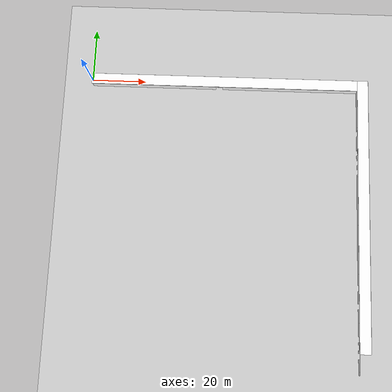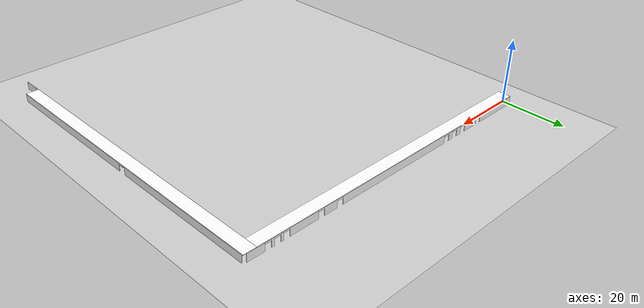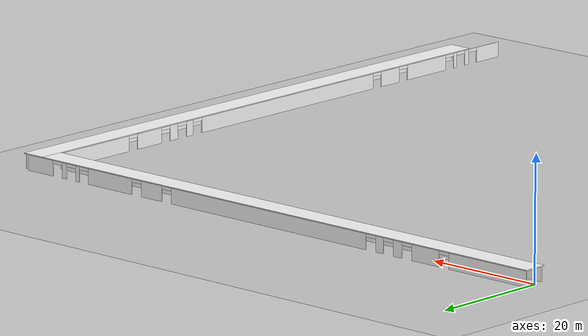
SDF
<sdf version="1.6">
 <world name="default">
  <light name="sun" type="directional">
   <pose>0 0 10 0 -0 0</pose>
   <diffuse>0.8 0.8 0.8 1</diffuse>
   <specular>0.2 0.2 0.2 1</specular>
   <attenuation>
    <range>1000</range>
    <constant>0.9</constant>
    <linear>0.01</linear>
    <quadratic>0.001</quadratic>
   </attenuation>
   <direction>-0.5 0.1 -0.9</direction>
  </light>
  <model name="ground_plane">
   <static>1</static>
   <link name="link">
    <collision name="collision">
     <geometry><plane><normal>0 0 1</normal><size>100 100</size></plane></geometry>
     <surface>
      <contact><collide_bitmask>65535</collide_bitmask></contact>
      <friction><ode><mu>100</mu><mu2>50</mu2></ode></friction>
     </surface>
    </collision>
    <visual name="visual">
     <cast_shadows>0</cast_shadows>
     <geometry><plane><normal>0 0 1</normal><size>100 100</size></plane></geometry>
     <material>
      <script><uri>file://media/materials/scripts/gazebo.material</uri><name>Gazebo/Grey</name></script>
     </material>
    </visual>
   </link>
  </model>
  <gravity>0 0 -9.8</gravity>
  <magnetic_field>6e-06 2.3e-05 -4.2e-05</magnetic_field>
  <atmosphere type="adiabatic"/>
  <physics name="default_physics" default="0" type="ode">
   <max_step_size>0.001</max_step_size>
   <real_time_factor>1</real_time_factor>
   <real_time_update_rate>1000</real_time_update_rate>
  </physics>
  <scene><ambient>0.4 0.4 0.4 1</ambient><background>0.7 0.7 0.7 1</background><shadows>1</shadows></scene>
  <audio><device>default</device></audio>
  <spherical_coordinates>
   <surface_model>EARTH_WGS84</surface_model>
   <latitude_deg>0</latitude_deg>
   <longitude_deg>0</longitude_deg>
   <elevation>0</elevation>
   <heading_deg>0</heading_deg>
  </spherical_coordinates>
  <model name="wall_with_door"><include><uri>model://wall_with_door</uri></include></model>
  <model name="wall_with_door_ex1"><include><uri>model://wall_with_door_ex1</uri></include></model>
  <model name="brick1"><include><uri>model://brick1</uri></include><pose>0 1.25 2.56 1.57 0 0</pose></model>
  <model name="wall_with_door">
   <include><uri>model://wall_with_door</uri></include>
   <pose>106 2 0 0 0 -1.57</pose>
  </model>
  <model name="wall_with_door_ex1">
   <include><uri>model://wall_with_door_ex1</uri></include>
   <pose>98 -2 0 0 0 -1.57</pose>
  </model>
  <model name="brick1">
   <include><uri>model://brick1</uri></include>
   <pose>103.25 2 2.56 1.57 0 -1.57</pose>
  </model>
 </world>
</sdf>

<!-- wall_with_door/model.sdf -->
<sdf version='1.6'>
  <model name='wall_with_door'>
    <pose frame=''>50  -2  0 0 -0 0</pose>
    <link name='Wall_2'>
      <pose frame=''>0 0 0 0 -0 0</pose>
 <visual name='Wall_2_Visual_0'>
 <pose frame=''> -26.272  0 1.25 0 -0 0</pose>
 <geometry>
 <box>
 <size> 46.5  0.15 2.5</size>
 </box>
 </geometry>
 <material>
 <script>
	 <uri>model://floor/materials/scripts</uri>
	 <uri>model://floor/materials/textures</uri>
 <name>floor</name>
 </script>
 <ambient>1 1 1 1</ambient>
 </material>
 <meta>
 <layer>0</layer>
 </meta>
 </visual>
 <collision name='Wall_2_Collision_0'>
 <geometry>
 <box>
  <size> 47.456  0.15 2.5</size>
 </box>
 </geometry>
 <pose frame=''> -26.272  0 1.25 0 -0 0</pose>
 </collision>
<visual name='Wall_2_Visual_1'>
 <pose frame=''> 24.728  0 1.25 0 -0 0</pose>
 <geometry>
 <box>
 <size> 50.544  0.15 2.5</size>
 </box>
 </geometry>
 <material>
 <script>
          <uri>model://floor/materials/scripts</uri>
         <uri>model://floor/materials/textures</uri>
 <name>floor</name>
 </script>
 <ambient>1 1 1 1</ambient>
 </material>
 <meta>
 <layer>0</layer>
 </meta>
 </visual>
 <collision name='Wall_2_Collision_1'>
 <geometry>
 <box>
  <size> 50.544  0.15 2.5</size>
 </box>
 </geometry>
 <pose frame=''> 24.728  0 1.25 0 -0 0</pose>
 </collision>
 <visual name='Door_2_Visual_0'>
 <pose frame=''> -1.544  0 2.25 0 -0 0</pose>
 <geometry>
 <box>
 <size>2 0.15 0.5</size>
 </box>
 </geometry>
 <material>
 <script>
          <uri>model://floor/materials/scripts</uri>
         <uri>model://floor/materials/textures</uri>
 <name>floor</name>
 </script>
 <ambient>1 1 1 1</ambient>
 </material>
 <meta>
 <layer>0</layer>
 </meta>
 </visual>
 <collision name='Door_2_Collision_0'>
 <geometry>
 <box>
 <size>2 0.15 0.5</size>
 </box>
 </geometry>
 <pose frame=''> -1.544  0 2.25 0 -0 0</pose>
 </collision>
 </link>
 <static>1</static>
 </model>
 </sdf>

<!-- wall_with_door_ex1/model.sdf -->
<sdf version='1.6'>
  <model name='wall_with_door'>
    <pose frame=''>50  2  0 0 -0 0</pose>
    <link name='Wall_2'>
      <pose frame=''>0 0 0 0 -0 0</pose>
 <visual name='Wall_2_Visual_0'>
 <pose frame=''> -42.3645  0 1.25 0 -0 0</pose>
 <geometry>
 <box>
 <size> 15.271  0.15 2.5</size>
 </box>
 </geometry>
 <material>
 <script>
          <uri>model://floor/materials/scripts</uri>
         <uri>model://floor/materials/textures</uri>
 <name>floor</name>
 </script>
 <ambient>1 1 1 1</ambient>
 </material>
 <meta>
 <layer>0</layer>
 </meta>
 </visual>
 <collision name='Wall_2_Collision_0'>
 <geometry>
 <box>
  <size> 15.271  0.15 2.5</size>
 </box>
 </geometry>
 <pose frame=''> -42.3645  0 1.25 0 -0 0</pose>
 </collision>
<visual name='Wall_2_Visual_1'>
 <pose frame=''> -30.0405  0 1.25 0 -0 0</pose>
 <geometry>
 <box>
 <size> 5.377  0.15 2.5</size>
 </box>
 </geometry>
 <material>
 <script>
          <uri>model://floor/materials/scripts</uri>
         <uri>model://floor/materials/textures</uri>
 <name>floor</name>
 </script>
 <ambient>1 1 1 1</ambient>
 </material>
 <meta>
 <layer>0</layer>
 </meta>
 </visual>
 <collision name='Wall_2_Collision_1'>
 <geometry>
 <box>
  <size> 5.377  0.15 2.5</size>
 </box>
 </geometry>
 <pose frame=''> -30.0405  0 1.25 0 -0 0</pose>
 </collision>
<visual name='Wall_2_Visual_2'>
 <pose frame=''> -24.472  0 1.25 0 -0 0</pose>
 <geometry>
 <box>
 <size> 1.76  0.15 2.5</size>
 </box>
 </geometry>
 <material>
 <script>
          <uri>model://floor/materials/scripts</uri>
         <uri>model://floor/materials/textures</uri>
 <name>floor</name>
 </script>
 <ambient>1 1 1 1</ambient>
 </material>
 <meta>
 <layer>0</layer>
 </meta>
 </visual>
 <collision name='Wall_2_Collision_2'>
 <geometry>
 <box>
  <size> 1.76  0.15 2.5</size>
 </box>
 </geometry>
 <pose frame=''> -24.472  0 1.25 0 -0 0</pose>
 </collision>
<visual name='Wall_2_Visual_3'>
 <pose frame=''> -20.8175  0 1.25 0 -0 0</pose>
 <geometry>
 <box>
 <size> 1.549  0.15 2.5</size>
 </box>
 </geometry>
 <material>
 <script>
          <uri>model://floor/materials/scripts</uri>
         <uri>model://floor/materials/textures</uri>
 <name>floor</name>

 </script>
 <ambient>1 1 1 1</ambient>
 </material>
 <meta>
 <layer>0</layer>
 </meta>
 </visual>
 <collision name='Wall_2_Collision_3'>
 <geometry>
 <box>
  <size> 1.549  0.15 2.5</size>
 </box>
 </geometry>
 <pose frame=''> -20.8175  0 1.25 0 -0 0</pose>
 </collision>
<visual name='Wall_2_Visual_4'>
 <pose frame=''> 2.1425  0 1.25 0 -0 0</pose>
 <geometry>
 <box>
 <size> 40.371  0.15 2.5</size>
 </box>
 </geometry>
 <material>
 <script>
          <uri>model://floor/materials/scripts</uri>
         <uri>model://floor/materials/textures</uri>
 <name>floor</name>
 </script>
 <ambient>1 1 1 1</ambient>
 </material>
 <meta>
 <layer>0</layer>
 </meta>
 </visual>
 <collision name='Wall_2_Collision_4'>
 <geometry>
 <box>
  <size> 40.371  0.15 2.5</size>
 </box>
 </geometry>
 <pose frame=''> 2.1425  0 1.25 0 -0 0</pose>
 </collision>
<visual name='Wall_2_Visual_5'>
 <pose frame=''> 26.519  0 1.25 0 -0 0</pose>
 <geometry>
 <box>
 <size> 4.382  0.15 2.5</size>
 </box>
 </geometry>
 <material>
 <script>
          <uri>model://floor/materials/scripts</uri>
         <uri>model://floor/materials/textures</uri>
 <name>floor</name>
 </script>
 <ambient>1 1 1 1</ambient>
 </material>
 <meta>
 <layer>0</layer>
 </meta>
 </visual>
 <collision name='Wall_2_Collision_5'>
 <geometry>
 <box>
  <size> 4.382  0.15 2.5</size>
 </box>
 </geometry>
 <pose frame=''> 26.519  0 1.25 0 -0 0</pose>
 </collision>
<visual name='Wall_2_Visual_6'>
 <pose frame=''> 35.369  0 1.25 0 -0 0</pose>
 <geometry>
 <box>
 <size> 9.318  0.15 2.5</size>
 </box>
 </geometry>
 <material>
 <script>
          <uri>model://floor/materials/scripts</uri>
         <uri>model://floor/materials/textures</uri>
 <name>floor</name>
 </script>
 <ambient>1 1 1 1</ambient>
 </material>
 <meta>
 <layer>0</layer>
 </meta>
 </visual>
 <collision name='Wall_2_Collision_6'>
 <geometry>
 <box>
  <size> 9.318  0.15 2.5</size>
 </box>
 </geometry>
 <pose frame=''> 35.369  0 1.25 0 -0 0</pose>
 </collision>
<visual name='Wall_2_Visual_7'>
 <pose frame=''> 42.4015  0 1.25 0 -0 0</pose>
 <geometry>
 <box>
 <size> 0.747  0.15 2.5</size>
 </box>
 </geometry>
 <material>
 <script>
          <uri>model://floor/materials/scripts</uri>
         <uri>model://floor/materials/textures</uri>
 <name>floor</name>

 </script>
 <ambient>1 1 1 1</ambient>
 </material>
 <meta>
 <layer>0</layer>
 </meta>
 </visual>
 <collision name='Wall_2_Collision_7'>
 <geometry>
 <box>
  <size> 0.747  0.15 2.5</size>
 </box>
 </geometry>
 <pose frame=''> 42.4015  0 1.25 0 -0 0</pose>
 </collision>
<visual name='Wall_2_Visual_8'>
 <pose frame=''> 45.239  0 1.25 0 -0 0</pose>
 <geometry>
 <box>
 <size> 0.928  0.15 2.5</size>
 </box>
 </geometry>
 <material>
 <script>
         <uri>model://floor/materials/scripts</uri>
         <uri>model://floor/materials/textures</uri>
 <name>floor</name>
 </script>
 <ambient>1 1 1 1</ambient>
 </material>
 <meta>
 <layer>0</layer>
 </meta>
 </visual>
 <collision name='Wall_2_Collision_8'>
 <geometry>
 <box>
  <size> 0.928  0.15 2.5</size>
 </box>
 </geometry>
 <pose frame=''> 45.239  0 1.25 0 -0 0</pose>
 </collision>
<visual name='Wall_2_Visual_9'>
 <pose frame=''> 50.4005  0 1.25 0 -0 0</pose>
 <geometry>
 <box>
 <size> 5.395  0.15 2.5</size>
 </box>
 </geometry>
 <material>
 <script>
          <uri>model://floor/materials/scripts</uri>
         <uri>model://floor/materials/textures</uri>
 <name>floor</name>
 </script>
 <ambient>1 1 1 1</ambient>
 </material>
 <meta>
 <layer>0</layer>
 </meta>
 </visual>
 <collision name='Wall_2_Collision_9'>
 <geometry>
 <box>
  <size> 5.395  0.15 2.5</size>
 </box>
 </geometry>
 <pose frame=''> 50.4005  0 1.25 0 -0 0</pose>
 </collision>
 <visual name='Door_2_Visual_0'>
 <pose frame=''> -33.729  0 2.25 0 -0 0</pose>
 <geometry>
 <box>
 <size>2 0.15 0.5</size>
 </box>
 </geometry>
 <material>
 <script>
          <uri>model://floor/materials/scripts</uri>
         <uri>model://floor/materials/textures</uri>
 <name>floor</name>
  </script>
 <ambient>1 1 1 1</ambient>
 </material>
 <meta>
 <layer>0</layer>
 </meta>
 </visual>
 <collision name='Door_2_Collision_0'>
 <geometry>
 <box>
 <size>2 0.15 0.5</size>
 </box>
 </geometry>
 <pose frame=''> -33.729  0 2.25 0 -0 0</pose>
 </collision>
<visual name='Door_2_Visual_1'>
 <pose frame=''> -26.352  0 2.25 0 -0 0</pose>
 <geometry>
 <box>
 <size>2 0.15 0.5</size>
 </box>
 </geometry>
 <material>
 <script>
          <uri>model://floor/materials/scripts</uri>
         <uri>model://floor/materials/textures</uri>
 <name>floor</name>
 </script>
 <ambient>1 1 1 1</ambient>
 </material>
 <meta>
 <layer>0</layer>
 </meta>
 </visual>
 <collision name='Door_2_Collision_1'>
 <geometry>
 <box>
 <size>2 0.15 0.5</size>
 </box>
 </geometry>
 <pose frame=''> -26.352  0 2.25 0 -0 0</pose>
 </collision>
<visual name='Door_2_Visual_2'>
 <pose frame=''> -22.592  0 2.25 0 -0 0</pose>
 <geometry>
 <box>
 <size>2 0.15 0.5</size>
 </box>
 </geometry>
 <material>
 <script>
          <uri>model://floor/materials/scripts</uri>
         <uri>model://floor/materials/textures</uri>
 <name>floor</name>
 </script>
 <ambient>1 1 1 1</ambient>
 </material>
 <meta>
 <layer>0</layer>
 </meta>
 </visual>
 <collision name='Door_2_Collision_2'>
 <geometry>
 <box>
 <size>2 0.15 0.5</size>
 </box>
 </geometry>
 <pose frame=''> -22.592  0 2.25 0 -0 0</pose>
 </collision>
<visual name='Door_2_Visual_3'>
 <pose frame=''> -19.043  0 2.25 0 -0 0</pose>
 <geometry>
 <box>
 <size>2 0.15 0.5</size>
 </box>
 </geometry>
 <material>
 <script>
         <uri>model://floor/materials/scripts</uri>
         <uri>model://floor/materials/textures</uri>
 <name>floor</name>

 </script>
 <ambient>1 1 1 1</ambient>
 </material>
 <meta>
 <layer>0</layer>
 </meta>
 </visual>
 <collision name='Door_2_Collision_3'>
 <geometry>
 <box>
 <size>2 0.15 0.5</size>
 </box>
 </geometry>
 <pose frame=''> -19.043  0 2.25 0 -0 0</pose>
 </collision>
<visual name='Door_2_Visual_4'>
 <pose frame=''> 23.328  0 2.25 0 -0 0</pose>
 <geometry>
 <box>
 <size>2 0.15 0.5</size>
 </box>
 </geometry>
 <material>
 <script>
         <uri>model://floor/materials/scripts</uri>
         <uri>model://floor/materials/textures</uri>
 <name>floor</name>
 </script>
 <ambient>1 1 1 1</ambient>
 </material>
 <meta>
 <layer>0</layer>
 </meta>
 </visual>
 <collision name='Door_2_Collision_4'>
 <geometry>
 <box>
 <size>2 0.15 0.5</size>
 </box>
 </geometry>
 <pose frame=''> 23.328  0 2.25 0 -0 0</pose>
 </collision>
<visual name='Door_2_Visual_5'>
 <pose frame=''> 29.71  0 2.25 0 -0 0</pose>
 <geometry>
 <box>
 <size>2 0.15 0.5</size>
 </box>
 </geometry>
 <material>
 <script>
	 <uri>model://floor/materials/scripts</uri>
  <uri>model://floor/materials/textures</uri>
 <name>floor</name>

 </script>
 <ambient>1 1 1 1</ambient>
 </material>
 <meta>
 <layer>0</layer>
 </meta>
 </visual>
 <collision name='Door_2_Collision_5'>
 <geometry>
 <box>
 <size>2 0.15 0.5</size>
 </box>
 </geometry>
 <pose frame=''> 29.71  0 2.25 0 -0 0</pose>
 </collision>
<visual name='Door_2_Visual_6'>
 <pose frame=''> 41.028  0 2.25 0 -0 0</pose>
 <geometry>
 <box>
 <size>2 0.15 0.5</size>
 </box>
 </geometry>
 <material>
 <script>
          <uri>model://floor/materials/scripts</uri>
         <uri>model://floor/materials/textures</uri>
 <name>floor</name>
 </script>
 <ambient>1 1 1 1</ambient>
 </material>
 <meta>
 <layer>0</layer>
 </meta>
 </visual>
 <collision name='Door_2_Collision_6'>
 <geometry>
 <box>
 <size>2 0.15 0.5</size>
 </box>
 </geometry>
 <pose frame=''> 41.028  0 2.25 0 -0 0</pose>
 </collision>
<visual name='Door_2_Visual_7'>
 <pose frame=''> 43.775  0 2.25 0 -0 0</pose>
 <geometry>
 <box>
 <size>2 0.15 0.5</size>
 </box>
 </geometry>
 <material>
	 <script>
	<uri>model://floor/materials/scripts</uri>
  <uri>model://floor/materials/textures</uri>
 <name>floor</name>

 </script>
 <ambient>1 1 1 1</ambient>
 </material>
 <meta>
 <layer>0</layer>
 </meta>
 </visual>
 <collision name='Door_2_Collision_7'>
 <geometry>
 <box>
 <size>2 0.15 0.5</size>
 </box>
 </geometry>
 <pose frame=''> 43.775  0 2.25 0 -0 0</pose>
 </collision>
<visual name='Door_2_Visual_8'>
 <pose frame=''> 46.703  0 2.25 0 -0 0</pose>
 <geometry>
 <box>
 <size>2 0.15 0.5</size>
 </box>
 </geometry>
 <material>
 <script>
          <uri>model://floor/materials/scripts</uri>
         <uri>model://floor/materials/textures</uri>
 <name>floor</name>
 </script>
 <ambient>1 1 1 1</ambient>
 </material>
 <meta>
 <layer>0</layer>
 </meta>
 </visual>
 <collision name='Door_2_Collision_8'>
 <geometry>
 <box>
 <size>2 0.15 0.5</size>
 </box>
 </geometry>
 <pose frame=''> 46.703  0 2.25 0 -0 0</pose>
 </collision>
 </link>
 <static>1</static>
 </model>
 </sdf>

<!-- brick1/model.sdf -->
<sdf version='1.6'>
 <model name='brick1'>
  <pose frame=''>50 0 0 0 -0 0</pose>
  <link name='Wall_0'>
  <collision name='Wall_0_Collision'>
  <geometry>
   <box>
    <size>100 0.15 4</size>
   </box>
   </geometry>
   <pose frame=''>0 0 1.25 0 -0 0</pose>
   </collision>
  <visual name='Wall_0_Visual'>
   <pose frame=''>0 0 1.25 0 -0 0</pose>
   <geometry>
	<box>
	 <size>100 0.15 4</size>
	</box>
   </geometry>
   <material>
	<script>
	<uri>model://floor/materials/scripts</uri>
	<uri>model://floor/materials/textures</uri>
   <name>floor</name>
   </script>
	<ambient>1 1 1 1</ambient>
   </material>
   <meta>
	<layer>0</layer>
	</meta>
	</visual>
  <pose frame=''>-0 0 0 0 -0 0</pose>
</link>
<static>1</static>
</model>
</sdf>
